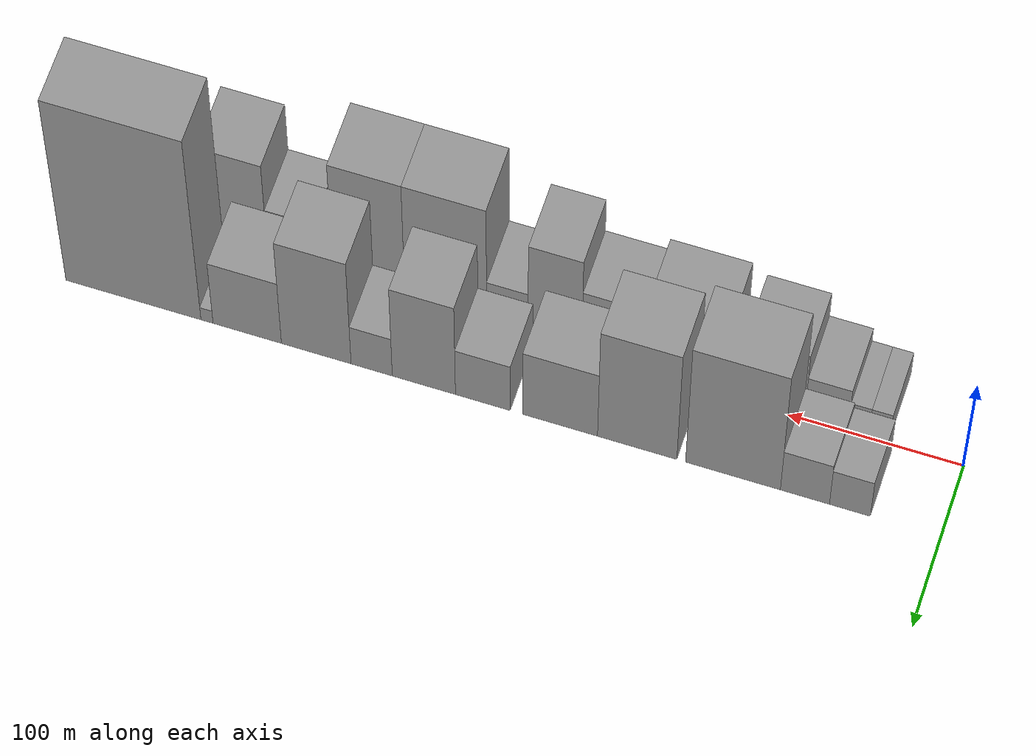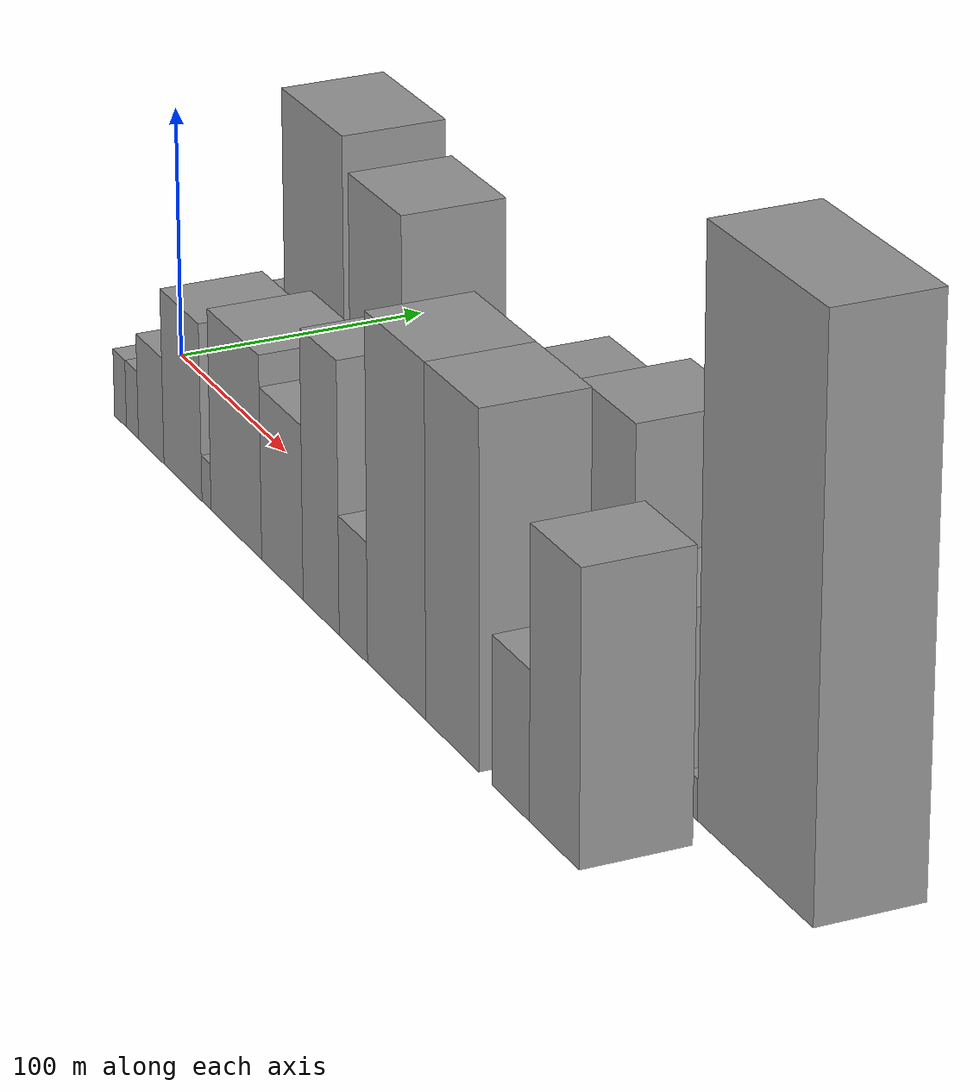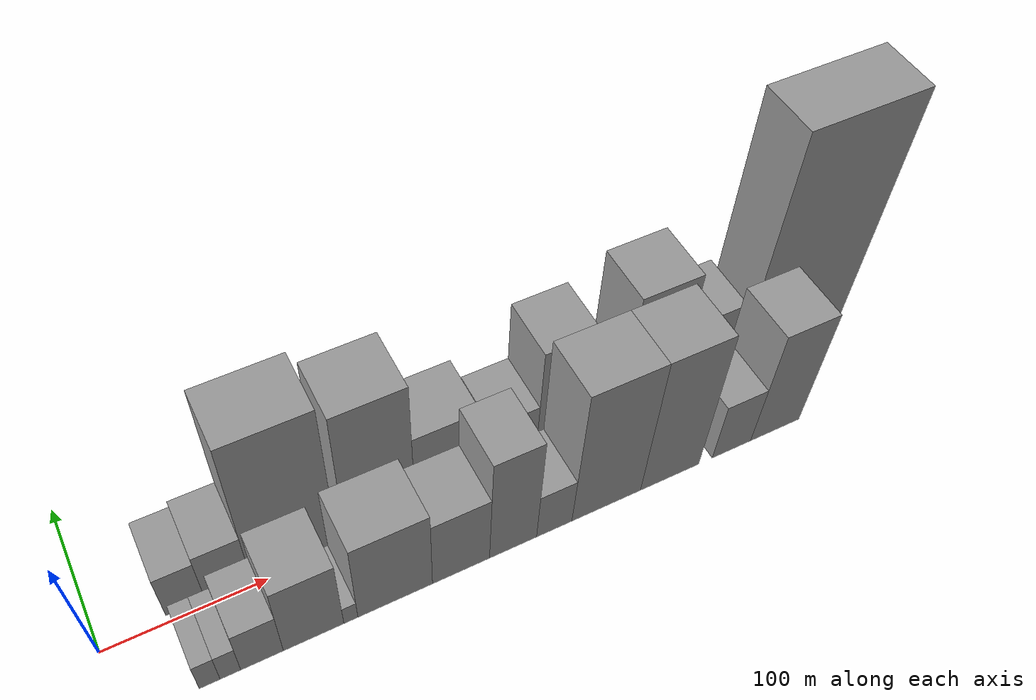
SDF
<sdf version="1.6">
 <world name="default">
  <scene>
   <sky><clouds><speed>12</speed></clouds></sky>
   <ambient>0.4 0.4 0.4 1</ambient>
   <background>0.7 0.7 0.7 1</background>
   <shadows>1</shadows>
  </scene>
  <gravity>0 0 -9.8066</gravity>
  <magnetic_field>6e-06 2.3e-05 -4.2e-05</magnetic_field>
  <physics default="0" name="default_physics" type="ode">
   <ode>
    <solver>
     <type>quick</type>
     <iters>10</iters>
     <sor>1.0</sor>
     <use_dynamic_moi_rescaling>0</use_dynamic_moi_rescaling>
    </solver>
    <constraints>
     <cfm>0</cfm>
     <erp>0.2</erp>
     <contact_max_correcting_vel>100</contact_max_correcting_vel>
     <contact_surface_layer>0.001</contact_surface_layer>
    </constraints>
   </ode>
   <max_step_size>0.004</max_step_size>
   <real_time_factor>1</real_time_factor>
   <real_time_update_rate>250</real_time_update_rate>
  </physics>
  <light name="sun" type="directional">
   <pose>0 0 10 0 0 0</pose>
   <diffuse>0.8 0.8 0.8 1</diffuse>
   <specular>0.2 0.2 0.2 1</specular>
   <attenuation>
    <range>1000</range>
    <constant>0.9</constant>
    <linear>0.01</linear>
    <quadratic>0.001</quadratic>
   </attenuation>
   <direction>-0.5 0.1 -0.9</direction>
  </light>
  <model name="building_1">
   <static>1</static>
   <pose>51.5973 24.5000 0 0.000000 0.000000 1.570796</pose>
   <link name="link">
    <pose>0 0 21.00 0 0 0</pose>
    <collision name="collision"><geometry><box><size>40.0000 23.1946 42.0000</size></box></geometry></collision>
    <visual name="visual">
     <cast_shadows>0</cast_shadows>
     <geometry><box><size>40.0000 23.1946 42.0000</size></box></geometry>
     <material>
      <script>
       <uri>model://grey_wall/materials/scripts</uri>
       <uri>model://grey_wall/materials/textures</uri>
       <name>vrc/grey_wall</name>
      </script>
     </material>
    </visual>
   </link>
  </model>
  <model name="building_2">
   <static>1</static>
   <pose>77.1093 24.5000 0 0.000000 0.000000 1.570796</pose>
   <link name="link">
    <pose>0 0 24.00 0 0 0</pose>
    <collision name="collision"><geometry><box><size>40.0000 27.8294 48.0000</size></box></geometry></collision>
    <visual name="visual">
     <cast_shadows>0</cast_shadows>
     <geometry><box><size>40.0000 27.8294 48.0000</size></box></geometry>
     <material>
      <script>
       <uri>model://grey_wall/materials/scripts</uri>
       <uri>model://grey_wall/materials/textures</uri>
       <name>vrc/grey_wall</name>
      </script>
     </material>
    </visual>
   </link>
  </model>
  <model name="building_3">
   <static>1</static>
   <pose>118.0186 24.5000 0 0.000000 0.000000 1.570796</pose>
   <link name="link">
    <pose>0 0 69.00 0 0 0</pose>
    <collision name="collision"><geometry><box><size>40.0000 53.9892 138.0000</size></box></geometry></collision>
    <visual name="visual">
     <cast_shadows>0</cast_shadows>
     <geometry><box><size>40.0000 53.9892 138.0000</size></box></geometry>
     <material>
      <script>
       <uri>model://grey_wall/materials/scripts</uri>
       <uri>model://grey_wall/materials/textures</uri>
       <name>vrc/grey_wall</name>
      </script>
     </material>
    </visual>
   </link>
  </model>
  <model name="building_4">
   <static>1</static>
   <pose>172.7192 24.5000 0 0.000000 0.000000 1.570796</pose>
   <link name="link">
    <pose>0 0 63.00 0 0 0</pose>
    <collision name="collision"><geometry><box><size>40.0000 45.4120 126.0000</size></box></geometry></collision>
    <visual name="visual">
     <cast_shadows>0</cast_shadows>
     <geometry><box><size>40.0000 45.4120 126.0000</size></box></geometry>
     <material>
      <script>
       <uri>model://grey_wall/materials/scripts</uri>
       <uri>model://grey_wall/materials/textures</uri>
       <name>vrc/grey_wall</name>
      </script>
     </material>
    </visual>
   </link>
  </model>
  <model name="building_5">
   <static>1</static>
   <pose>216.9900 24.5000 0 0.000000 0.000000 1.570796</pose>
   <link name="link">
    <pose>0 0 37.50 0 0 0</pose>
    <collision name="collision"><geometry><box><size>40.0000 43.1296 75.0000</size></box></geometry></collision>
    <visual name="visual">
     <cast_shadows>0</cast_shadows>
     <geometry><box><size>40.0000 43.1296 75.0000</size></box></geometry>
     <material>
      <script>
       <uri>model://grey_wall/materials/scripts</uri>
       <uri>model://grey_wall/materials/textures</uri>
       <name>vrc/grey_wall</name>
      </script>
     </material>
    </visual>
   </link>
  </model>
  <model name="building_6">
   <static>1</static>
   <pose>261.3660 24.5000 0 0.000000 0.000000 1.570796</pose>
   <link name="link">
    <pose>0 0 27.00 0 0 0</pose>
    <collision name="collision"><geometry><box><size>40.0000 31.6223 54.0000</size></box></geometry></collision>
    <visual name="visual">
     <cast_shadows>0</cast_shadows>
     <geometry><box><size>40.0000 31.6223 54.0000</size></box></geometry>
     <material>
      <script>
       <uri>model://grey_wall/materials/scripts</uri>
       <uri>model://grey_wall/materials/textures</uri>
       <name>vrc/grey_wall</name>
      </script>
     </material>
    </visual>
   </link>
  </model>
  <model name="building_7">
   <static>1</static>
   <pose>295.4621 24.5000 0 0.000000 0.000000 1.570796</pose>
   <link name="link">
    <pose>0 0 52.50 0 0 0</pose>
    <collision name="collision"><geometry><box><size>40.0000 36.5700 105.0000</size></box></geometry></collision>
    <visual name="visual">
     <cast_shadows>0</cast_shadows>
     <geometry><box><size>40.0000 36.5700 105.0000</size></box></geometry>
     <material>
      <script>
       <uri>model://grey_wall/materials/scripts</uri>
       <uri>model://grey_wall/materials/textures</uri>
       <name>vrc/grey_wall</name>
      </script>
     </material>
    </visual>
   </link>
  </model>
  <model name="building_8">
   <static>1</static>
   <pose>325.6835 24.5000 0 0.000000 0.000000 1.570796</pose>
   <link name="link">
    <pose>0 0 22.50 0 0 0</pose>
    <collision name="collision"><geometry><box><size>40.0000 23.8728 45.0000</size></box></geometry></collision>
    <visual name="visual">
     <cast_shadows>0</cast_shadows>
     <geometry><box><size>40.0000 23.8728 45.0000</size></box></geometry>
     <material>
      <script>
       <uri>model://grey_wall/materials/scripts</uri>
       <uri>model://grey_wall/materials/textures</uri>
       <name>vrc/grey_wall</name>
      </script>
     </material>
    </visual>
   </link>
  </model>
  <model name="building_9">
   <static>1</static>
   <pose>357.8787 24.5000 0 0.000000 0.000000 1.570796</pose>
   <link name="link">
    <pose>0 0 60.00 0 0 0</pose>
    <collision name="collision"><geometry><box><size>40.0000 40.5176 120.0000</size></box></geometry></collision>
    <visual name="visual">
     <cast_shadows>0</cast_shadows>
     <geometry><box><size>40.0000 40.5176 120.0000</size></box></geometry>
     <material>
      <script>
       <uri>model://grey_wall/materials/scripts</uri>
       <uri>model://grey_wall/materials/textures</uri>
       <name>vrc/grey_wall</name>
      </script>
     </material>
    </visual>
   </link>
  </model>
  <model name="building_10">
   <static>1</static>
   <pose>398.0920 24.5000 0 0.000000 0.000000 1.570796</pose>
   <link name="link">
    <pose>0 0 36.00 0 0 0</pose>
    <collision name="collision"><geometry><box><size>40.0000 39.9090 72.0000</size></box></geometry></collision>
    <visual name="visual">
     <cast_shadows>0</cast_shadows>
     <geometry><box><size>40.0000 39.9090 72.0000</size></box></geometry>
     <material>
      <script>
       <uri>model://grey_wall/materials/scripts</uri>
       <uri>model://grey_wall/materials/textures</uri>
       <name>vrc/grey_wall</name>
      </script>
     </material>
    </visual>
   </link>
  </model>
  <model name="building_11">
   <static>1</static>
   <pose>421.5787 24.5000 0 0.000000 0.000000 1.570796</pose>
   <link name="link">
    <pose>0 0 7.50 0 0 0</pose>
    <collision name="collision"><geometry><box><size>40.0000 7.0644 15.0000</size></box></geometry></collision>
    <visual name="visual">
     <cast_shadows>0</cast_shadows>
     <geometry><box><size>40.0000 7.0644 15.0000</size></box></geometry>
     <material>
      <script>
       <uri>model://grey_wall/materials/scripts</uri>
       <uri>model://grey_wall/materials/textures</uri>
       <name>vrc/grey_wall</name>
      </script>
     </material>
    </visual>
   </link>
  </model>
  <model name="building_12">
   <static>1</static>
   <pose>464.7364 24.5000 0 0.000000 0.000000 1.570796</pose>
   <link name="link">
    <pose>0 0 103.50 0 0 0</pose>
    <collision name="collision"><geometry><box><size>40.0000 79.2510 207.0000</size></box></geometry></collision>
    <visual name="visual">
     <cast_shadows>0</cast_shadows>
     <geometry><box><size>40.0000 79.2510 207.0000</size></box></geometry>
     <material>
      <script>
       <uri>model://grey_wall/materials/scripts</uri>
       <uri>model://grey_wall/materials/textures</uri>
       <name>vrc/grey_wall</name>
      </script>
     </material>
    </visual>
   </link>
  </model>
  <model name="building_13">
   <static>1</static>
   <pose>48.9707 -24.5000 0 0.000000 0.000000 1.570796</pose>
   <link name="link">
    <pose>0 0 13.50 0 0 0</pose>
    <collision name="collision"><geometry><box><size>40.0000 11.9414 27.0000</size></box></geometry></collision>
    <visual name="visual">
     <cast_shadows>0</cast_shadows>
     <geometry><box><size>40.0000 11.9414 27.0000</size></box></geometry>
     <material>
      <script>
       <uri>model://grey_wall/materials/scripts</uri>
       <uri>model://grey_wall/materials/textures</uri>
       <name>vrc/grey_wall</name>
      </script>
     </material>
    </visual>
   </link>
  </model>
  <model name="building_14">
   <static>1</static>
   <pose>60.8816 -24.5000 0 0.000000 0.000000 1.570796</pose>
   <link name="link">
    <pose>0 0 13.50 0 0 0</pose>
    <collision name="collision"><geometry><box><size>40.0000 11.8805 27.0000</size></box></geometry></collision>
    <visual name="visual">
     <cast_shadows>0</cast_shadows>
     <geometry><box><size>40.0000 11.8805 27.0000</size></box></geometry>
     <material>
      <script>
       <uri>model://grey_wall/materials/scripts</uri>
       <uri>model://grey_wall/materials/textures</uri>
       <name>vrc/grey_wall</name>
      </script>
     </material>
    </visual>
   </link>
  </model>
  <model name="building_15">
   <static>1</static>
   <pose>79.3261 -24.5000 0 0.000000 0.000000 1.570796</pose>
   <link name="link">
    <pose>0 0 21.00 0 0 0</pose>
    <collision name="collision"><geometry><box><size>40.0000 25.0086 42.0000</size></box></geometry></collision>
    <visual name="visual">
     <cast_shadows>0</cast_shadows>
     <geometry><box><size>40.0000 25.0086 42.0000</size></box></geometry>
     <material>
      <script>
       <uri>model://grey_wall/materials/scripts</uri>
       <uri>model://grey_wall/materials/textures</uri>
       <name>vrc/grey_wall</name>
      </script>
     </material>
    </visual>
   </link>
  </model>
  <model name="building_16">
   <static>1</static>
   <pose>109.9999 -24.5000 0 0.000000 0.000000 1.570796</pose>
   <link name="link">
    <pose>0 0 34.50 0 0 0</pose>
    <collision name="collision"><geometry><box><size>40.0000 36.3388 69.0000</size></box></geometry></collision>
    <visual name="visual">
     <cast_shadows>0</cast_shadows>
     <geometry><box><size>40.0000 36.3388 69.0000</size></box></geometry>
     <material>
      <script>
       <uri>model://grey_wall/materials/scripts</uri>
       <uri>model://grey_wall/materials/textures</uri>
       <name>vrc/grey_wall</name>
      </script>
     </material>
    </visual>
   </link>
  </model>
  <model name="building_17">
   <static>1</static>
   <pose>132.4375 -24.5000 0 0.000000 0.000000 1.570796</pose>
   <link name="link">
    <pose>0 0 9.00 0 0 0</pose>
    <collision name="collision"><geometry><box><size>40.0000 8.5364 18.0000</size></box></geometry></collision>
    <visual name="visual">
     <cast_shadows>0</cast_shadows>
     <geometry><box><size>40.0000 8.5364 18.0000</size></box></geometry>
     <material>
      <script>
       <uri>model://grey_wall/materials/scripts</uri>
       <uri>model://grey_wall/materials/textures</uri>
       <name>vrc/grey_wall</name>
      </script>
     </material>
    </visual>
   </link>
  </model>
  <model name="building_18">
   <static>1</static>
   <pose>160.0259 -24.5000 0 0.000000 0.000000 1.570796</pose>
   <link name="link">
    <pose>0 0 39.00 0 0 0</pose>
    <collision name="collision"><geometry><box><size>40.0000 46.6404 78.0000</size></box></geometry></collision>
    <visual name="visual">
     <cast_shadows>0</cast_shadows>
     <geometry><box><size>40.0000 46.6404 78.0000</size></box></geometry>
     <material>
      <script>
       <uri>model://grey_wall/materials/scripts</uri>
       <uri>model://grey_wall/materials/textures</uri>
       <name>vrc/grey_wall</name>
      </script>
     </material>
    </visual>
   </link>
  </model>
  <model name="building_19">
   <static>1</static>
   <pose>201.7365 -24.5000 0 0.000000 0.000000 1.570796</pose>
   <link name="link">
    <pose>0 0 33.00 0 0 0</pose>
    <collision name="collision"><geometry><box><size>40.0000 36.7809 66.0000</size></box></geometry></collision>
    <visual name="visual">
     <cast_shadows>0</cast_shadows>
     <geometry><box><size>40.0000 36.7809 66.0000</size></box></geometry>
     <material>
      <script>
       <uri>model://grey_wall/materials/scripts</uri>
       <uri>model://grey_wall/materials/textures</uri>
       <name>vrc/grey_wall</name>
      </script>
     </material>
    </visual>
   </link>
  </model>
  <model name="building_20">
   <static>1</static>
   <pose>235.6997 -24.5000 0 0.000000 0.000000 1.570796</pose>
   <link name="link">
    <pose>0 0 51.00 0 0 0</pose>
    <collision name="collision"><geometry><box><size>40.0000 31.1454 102.0000</size></box></geometry></collision>
    <visual name="visual">
     <cast_shadows>0</cast_shadows>
     <geometry><box><size>40.0000 31.1454 102.0000</size></box></geometry>
     <material>
      <script>
       <uri>model://grey_wall/materials/scripts</uri>
       <uri>model://grey_wall/materials/textures</uri>
       <name>vrc/grey_wall</name>
      </script>
     </material>
    </visual>
   </link>
  </model>
  <model name="building_21">
   <static>1</static>
   <pose>263.2120 -24.5000 0 0.000000 0.000000 1.570796</pose>
   <link name="link">
    <pose>0 0 22.50 0 0 0</pose>
    <collision name="collision"><geometry><box><size>40.0000 23.8793 45.0000</size></box></geometry></collision>
    <visual name="visual">
     <cast_shadows>0</cast_shadows>
     <geometry><box><size>40.0000 23.8793 45.0000</size></box></geometry>
     <material>
      <script>
       <uri>model://grey_wall/materials/scripts</uri>
       <uri>model://grey_wall/materials/textures</uri>
       <name>vrc/grey_wall</name>
      </script>
     </material>
    </visual>
   </link>
  </model>
  <model name="building_22">
   <static>1</static>
   <pose>298.9923 -24.5000 0 0.000000 0.000000 1.570796</pose>
   <link name="link">
    <pose>0 0 64.50 0 0 0</pose>
    <collision name="collision"><geometry><box><size>40.0000 47.6812 129.0000</size></box></geometry></collision>
    <visual name="visual">
     <cast_shadows>0</cast_shadows>
     <geometry><box><size>40.0000 47.6812 129.0000</size></box></geometry>
     <material>
      <script>
       <uri>model://grey_wall/materials/scripts</uri>
       <uri>model://grey_wall/materials/textures</uri>
       <name>vrc/grey_wall</name>
      </script>
     </material>
    </visual>
   </link>
  </model>
  <model name="building_23">
   <static>1</static>
   <pose>343.7657 -24.5000 0 0.000000 0.000000 1.570796</pose>
   <link name="link">
    <pose>0 0 64.50 0 0 0</pose>
    <collision name="collision"><geometry><box><size>40.0000 41.8657 129.0000</size></box></geometry></collision>
    <visual name="visual">
     <cast_shadows>0</cast_shadows>
     <geometry><box><size>40.0000 41.8657 129.0000</size></box></geometry>
     <material>
      <script>
       <uri>model://grey_wall/materials/scripts</uri>
       <uri>model://grey_wall/materials/textures</uri>
       <name>vrc/grey_wall</name>
      </script>
     </material>
    </visual>
   </link>
  </model>
  <model name="building_24">
   <static>1</static>
   <pose>388.8633 -24.5000 0 0.000000 0.000000 1.570796</pose>
   <link name="link">
    <pose>0 0 27.00 0 0 0</pose>
    <collision name="collision"><geometry><box><size>40.0000 28.3294 54.0000</size></box></geometry></collision>
    <visual name="visual">
     <cast_shadows>0</cast_shadows>
     <geometry><box><size>40.0000 28.3294 54.0000</size></box></geometry>
     <material>
      <script>
       <uri>model://grey_wall/materials/scripts</uri>
       <uri>model://grey_wall/materials/textures</uri>
       <name>vrc/grey_wall</name>
      </script>
     </material>
    </visual>
   </link>
  </model>
  <model name="building_25">
   <static>1</static>
   <pose>421.3412 -24.5000 0 0.000000 0.000000 1.570796</pose>
   <link name="link">
    <pose>0 0 52.50 0 0 0</pose>
    <collision name="collision"><geometry><box><size>40.0000 36.6265 105.0000</size></box></geometry></collision>
    <visual name="visual">
     <cast_shadows>0</cast_shadows>
     <geometry><box><size>40.0000 36.6265 105.0000</size></box></geometry>
     <material>
      <script>
       <uri>model://grey_wall/materials/scripts</uri>
       <uri>model://grey_wall/materials/textures</uri>
       <name>vrc/grey_wall</name>
      </script>
     </material>
    </visual>
   </link>
  </model>
 </world>
</sdf>
